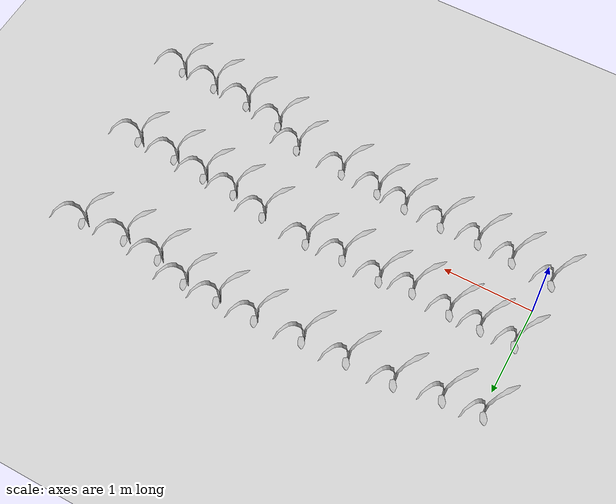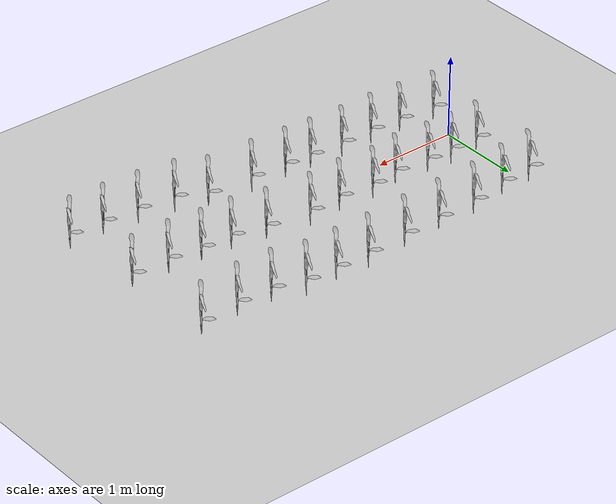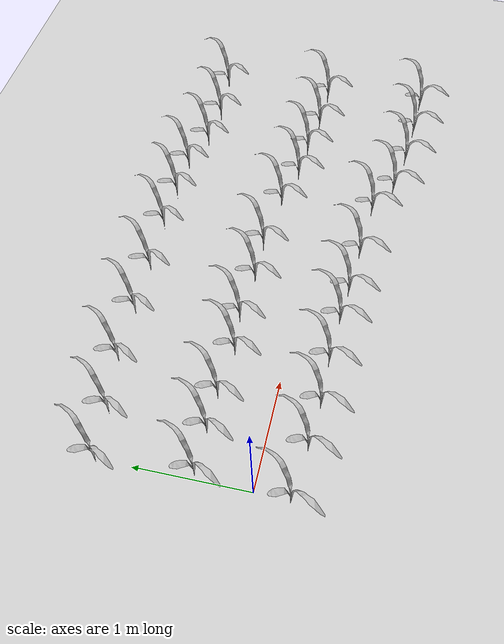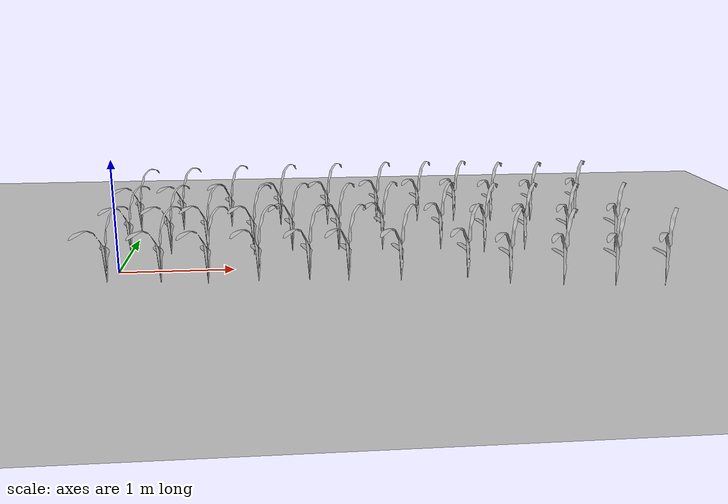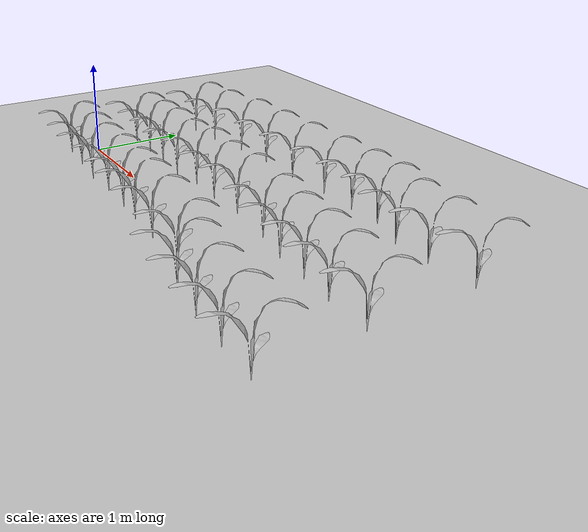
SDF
<sdf version="1.7">
 <world name="default">
  <model name="ground_plane">
   <static>1</static>
   <link name="link">
    <collision name="collision">
     <geometry><plane><normal>0 0 1</normal><size>100 100</size></plane></geometry>
     <surface><friction><ode><mu>100</mu><mu2>50</mu2></ode></friction></surface>
    </collision>
    <visual name="visual">
     <cast_shadows>0</cast_shadows>
     <geometry><plane><normal>0 0 1</normal><size>100 100</size></plane></geometry>
     <material>
      <script><uri>file://media/materials/scripts/gazebo.material</uri><name>Gazebo/Grey</name></script>
     </material>
    </visual>
   </link>
  </model>
  <model name="maize_02">
   <pose>-0.039197 -0.307598 -0 0 -4e-06 1.9e-05</pose>
   <link name="maize_02_link">
    <inertial>
     <pose>0 0 0.01 0 -0 0</pose>
     <mass>0.3</mass>
     <inertia>
      <ixx>0.00334167</ixx>
      <ixy>0</ixy>
      <ixz>0</ixz>
      <iyy>0.00334167</iyy>
      <iyz>0</iyz>
      <izz>1.66667e-05</izz>
     </inertia>
     <pose>0 0 0.1 0 -0 0</pose>
    </inertial>
    <collision name="collision">
     <pose>0 0 0.2 0 -0 0</pose>
     <geometry><box><size>0.02 0.02 0.4</size></box></geometry>
     <surface><friction><ode><mu>10</mu><mu2>10</mu2></ode></friction></surface>
    </collision>
    <visual name="visual">
     <geometry>
      <mesh><uri>model://maize_02/meshes/maize_02.dae</uri><scale>0.683166 0.683166 0.683166</scale></mesh>
     </geometry>
    </visual>
   </link>
  </model>
  <model name="maize_02_clone">
   <pose>0.414629 -0.353848 -0 0 -3e-06 9.8e-05</pose>
   <link name="maize_02_link">
    <inertial>
     <pose>0 0 0.01 0 -0 0</pose>
     <mass>0.3</mass>
     <inertia>
      <ixx>0.00334167</ixx>
      <ixy>0</ixy>
      <ixz>0</ixz>
      <iyy>0.00334167</iyy>
      <iyz>0</iyz>
      <izz>1.66667e-05</izz>
     </inertia>
     <pose>0 0 0.1 0 -0 0</pose>
    </inertial>
    <collision name="collision">
     <pose>0 0 0.2 0 -0 0</pose>
     <geometry><box><size>0.02 0.02 0.4</size></box></geometry>
     <surface><friction><ode><mu>10</mu><mu2>10</mu2></ode></friction></surface>
    </collision>
    <visual name="visual">
     <geometry>
      <mesh><uri>model://maize_02/meshes/maize_02.dae</uri><scale>0.683166 0.683166 0.683166</scale></mesh>
     </geometry>
    </visual>
   </link>
  </model>
  <model name="maize_02_clone_0">
   <pose>0.80933 -0.382771 0 -1.8e-05 -4.5e-05 0.000173</pose>
   <link name="maize_02_link">
    <inertial>
     <pose>0 0 0.01 0 -0 0</pose>
     <mass>0.3</mass>
     <inertia>
      <ixx>0.00334167</ixx>
      <ixy>0</ixy>
      <ixz>0</ixz>
      <iyy>0.00334167</iyy>
      <iyz>0</iyz>
      <izz>1.66667e-05</izz>
     </inertia>
     <pose>0 0 0.1 0 -0 0</pose>
    </inertial>
    <collision name="collision">
     <pose>0 0 0.2 0 -0 0</pose>
     <geometry><box><size>0.02 0.02 0.4</size></box></geometry>
     <surface><friction><ode><mu>10</mu><mu2>10</mu2></ode></friction></surface>
    </collision>
    <visual name="visual">
     <geometry>
      <mesh><uri>model://maize_02/meshes/maize_02.dae</uri><scale>0.683166 0.683166 0.683166</scale></mesh>
     </geometry>
    </visual>
   </link>
  </model>
  <model name="maize_02_clone_1">
   <pose>1.23142 -0.376674 0 8e-06 3e-06 4.9e-05</pose>
   <link name="maize_02_link">
    <inertial>
     <pose>0 0 0.01 0 -0 0</pose>
     <mass>0.3</mass>
     <inertia>
      <ixx>0.00334167</ixx>
      <ixy>0</ixy>
      <ixz>0</ixz>
      <iyy>0.00334167</iyy>
      <iyz>0</iyz>
      <izz>1.66667e-05</izz>
     </inertia>
     <pose>0 0 0.1 0 -0 0</pose>
    </inertial>
    <collision name="collision">
     <pose>0 0 0.2 0 -0 0</pose>
     <geometry><box><size>0.02 0.02 0.4</size></box></geometry>
     <surface><friction><ode><mu>10</mu><mu2>10</mu2></ode></friction></surface>
    </collision>
    <visual name="visual">
     <geometry>
      <mesh><uri>model://maize_02/meshes/maize_02.dae</uri><scale>0.683166 0.683166 0.683166</scale></mesh>
     </geometry>
    </visual>
   </link>
  </model>
  <model name="maize_02_clone_2">
   <pose>1.65894 -0.396394 -0 0 1e-06 4e-05</pose>
   <link name="maize_02_link">
    <inertial>
     <pose>0 0 0.01 0 -0 0</pose>
     <mass>0.3</mass>
     <inertia>
      <ixx>0.00334167</ixx>
      <ixy>0</ixy>
      <ixz>0</ixz>
      <iyy>0.00334167</iyy>
      <iyz>0</iyz>
      <izz>1.66667e-05</izz>
     </inertia>
     <pose>0 0 0.1 0 -0 0</pose>
    </inertial>
    <collision name="collision">
     <pose>0 0 0.2 0 -0 0</pose>
     <geometry><box><size>0.02 0.02 0.4</size></box></geometry>
     <surface><friction><ode><mu>10</mu><mu2>10</mu2></ode></friction></surface>
    </collision>
    <visual name="visual">
     <geometry>
      <mesh><uri>model://maize_02/meshes/maize_02.dae</uri><scale>0.683166 0.683166 0.683166</scale></mesh>
     </geometry>
    </visual>
   </link>
  </model>
  <model name="maize_02_clone_3">
   <pose>1.9905 -0.421164 0 6e-06 -0 0.000102</pose>
   <link name="maize_02_link">
    <inertial>
     <pose>0 0 0.01 0 -0 0</pose>
     <mass>0.3</mass>
     <inertia>
      <ixx>0.00334167</ixx>
      <ixy>0</ixy>
      <ixz>0</ixz>
      <iyy>0.00334167</iyy>
      <iyz>0</iyz>
      <izz>1.66667e-05</izz>
     </inertia>
     <pose>0 0 0.1 0 -0 0</pose>
    </inertial>
    <collision name="collision">
     <pose>0 0 0.2 0 -0 0</pose>
     <geometry><box><size>0.02 0.02 0.4</size></box></geometry>
     <surface><friction><ode><mu>10</mu><mu2>10</mu2></ode></friction></surface>
    </collision>
    <visual name="visual">
     <geometry>
      <mesh><uri>model://maize_02/meshes/maize_02.dae</uri><scale>0.683166 0.683166 0.683166</scale></mesh>
     </geometry>
    </visual>
   </link>
  </model>
  <model name="maize_02_clone_4">
   <pose>2.43459 -0.452195 -0 0 3e-06 0.000107</pose>
   <link name="maize_02_link">
    <inertial>
     <pose>0 0 0.01 0 -0 0</pose>
     <mass>0.3</mass>
     <inertia>
      <ixx>0.00334167</ixx>
      <ixy>0</ixy>
      <ixz>0</ixz>
      <iyy>0.00334167</iyy>
      <iyz>0</iyz>
      <izz>1.66667e-05</izz>
     </inertia>
     <pose>0 0 0.1 0 -0 0</pose>
    </inertial>
    <collision name="collision">
     <pose>0 0 0.2 0 -0 0</pose>
     <geometry><box><size>0.02 0.02 0.4</size></box></geometry>
     <surface><friction><ode><mu>10</mu><mu2>10</mu2></ode></friction></surface>
    </collision>
    <visual name="visual">
     <geometry>
      <mesh><uri>model://maize_02/meshes/maize_02.dae</uri><scale>0.683166 0.683166 0.683166</scale></mesh>
     </geometry>
    </visual>
   </link>
  </model>
  <model name="maize_02_clone_5">
   <pose>3 -0.486082 -0 -0 -3e-06 3.7e-05</pose>
   <link name="maize_02_link">
    <inertial>
     <pose>0 0 0.01 0 -0 0</pose>
     <mass>0.3</mass>
     <inertia>
      <ixx>0.00334167</ixx>
      <ixy>0</ixy>
      <ixz>0</ixz>
      <iyy>0.00334167</iyy>
      <iyz>0</iyz>
      <izz>1.66667e-05</izz>
     </inertia>
     <pose>0 0 0.1 0 -0 0</pose>
    </inertial>
    <collision name="collision">
     <pose>0 0 0.2 0 -0 0</pose>
     <geometry><box><size>0.02 0.02 0.4</size></box></geometry>
     <surface><friction><ode><mu>10</mu><mu2>10</mu2></ode></friction></surface>
    </collision>
    <visual name="visual">
     <geometry>
      <mesh><uri>model://maize_02/meshes/maize_02.dae</uri><scale>0.683166 0.683166 0.683166</scale></mesh>
     </geometry>
    </visual>
   </link>
  </model>
  <model name="maize_02_clone_6">
   <pose>3.32711 -0.655314 -0 -0 4e-06 4.4e-05</pose>
   <link name="maize_02_link">
    <inertial>
     <pose>0 0 0.01 0 -0 0</pose>
     <mass>0.3</mass>
     <inertia>
      <ixx>0.00334167</ixx>
      <ixy>0</ixy>
      <ixz>0</ixz>
      <iyy>0.00334167</iyy>
      <iyz>0</iyz>
      <izz>1.66667e-05</izz>
     </inertia>
     <pose>0 0 0.1 0 -0 0</pose>
    </inertial>
    <collision name="collision">
     <pose>0 0 0.2 0 -0 0</pose>
     <geometry><box><size>0.02 0.02 0.4</size></box></geometry>
     <surface><friction><ode><mu>10</mu><mu2>10</mu2></ode></friction></surface>
    </collision>
    <visual name="visual">
     <geometry>
      <mesh><uri>model://maize_02/meshes/maize_02.dae</uri><scale>0.683166 0.683166 0.683166</scale></mesh>
     </geometry>
    </visual>
   </link>
  </model>
  <model name="maize_02_clone_7">
   <pose>3.76486 -0.722555 0 -1.6e-05 1.1e-05 -3.2e-05</pose>
   <link name="maize_02_link">
    <inertial>
     <pose>0 0 0.01 0 -0 0</pose>
     <mass>0.3</mass>
     <inertia>
      <ixx>0.00334167</ixx>
      <ixy>0</ixy>
      <ixz>0</ixz>
      <iyy>0.00334167</iyy>
      <iyz>0</iyz>
      <izz>1.66667e-05</izz>
     </inertia>
     <pose>0 0 0.1 0 -0 0</pose>
    </inertial>
    <collision name="collision">
     <pose>0 0 0.2 0 -0 0</pose>
     <geometry><box><size>0.02 0.02 0.4</size></box></geometry>
     <surface><friction><ode><mu>10</mu><mu2>10</mu2></ode></friction></surface>
    </collision>
    <visual name="visual">
     <geometry>
      <mesh><uri>model://maize_02/meshes/maize_02.dae</uri><scale>0.683166 0.683166 0.683166</scale></mesh>
     </geometry>
    </visual>
   </link>
  </model>
  <model name="maize_02_clone_8">
   <pose>4.19992 -0.75592 0 1.4e-05 -9e-06 -8.9e-05</pose>
   <link name="maize_02_link">
    <inertial>
     <pose>0 0 0.01 0 -0 0</pose>
     <mass>0.3</mass>
     <inertia>
      <ixx>0.00334167</ixx>
      <ixy>0</ixy>
      <ixz>0</ixz>
      <iyy>0.00334167</iyy>
      <iyz>0</iyz>
      <izz>1.66667e-05</izz>
     </inertia>
     <pose>0 0 0.1 0 -0 0</pose>
    </inertial>
    <collision name="collision">
     <pose>0 0 0.2 0 -0 0</pose>
     <geometry><box><size>0.02 0.02 0.4</size></box></geometry>
     <surface><friction><ode><mu>10</mu><mu2>10</mu2></ode></friction></surface>
    </collision>
    <visual name="visual">
     <geometry>
      <mesh><uri>model://maize_02/meshes/maize_02.dae</uri><scale>0.683166 0.683166 0.683166</scale></mesh>
     </geometry>
    </visual>
   </link>
  </model>
  <model name="maize_02_clone_9">
   <pose>4.61985 -0.775823 0 8e-06 4e-05 -9.1e-05</pose>
   <link name="maize_02_link">
    <inertial>
     <pose>0 0 0.01 0 -0 0</pose>
     <mass>0.3</mass>
     <inertia>
      <ixx>0.00334167</ixx>
      <ixy>0</ixy>
      <ixz>0</ixz>
      <iyy>0.00334167</iyy>
      <iyz>0</iyz>
      <izz>1.66667e-05</izz>
     </inertia>
     <pose>0 0 0.1 0 -0 0</pose>
    </inertial>
    <collision name="collision">
     <pose>0 0 0.2 0 -0 0</pose>
     <geometry><box><size>0.02 0.02 0.4</size></box></geometry>
     <surface><friction><ode><mu>10</mu><mu2>10</mu2></ode></friction></surface>
    </collision>
    <visual name="visual">
     <geometry>
      <mesh><uri>model://maize_02/meshes/maize_02.dae</uri><scale>0.683166 0.683166 0.683166</scale></mesh>
     </geometry>
    </visual>
   </link>
  </model>
  <model name="maize_02_clone_22">
   <pose>0.01515 0.477195 0 -3.4e-05 -1.4e-05 -4.3e-05</pose>
   <link name="maize_02_link">
    <inertial>
     <pose>0 0 0.01 0 -0 0</pose>
     <mass>0.3</mass>
     <inertia>
      <ixx>0.00334167</ixx>
      <ixy>0</ixy>
      <ixz>0</ixz>
      <iyy>0.00334167</iyy>
      <iyz>0</iyz>
      <izz>1.66667e-05</izz>
     </inertia>
     <pose>0 0 0.1 0 -0 0</pose>
    </inertial>
    <collision name="collision">
     <pose>0 0 0.2 0 -0 0</pose>
     <geometry><box><size>0.02 0.02 0.4</size></box></geometry>
     <surface><friction><ode><mu>10</mu><mu2>10</mu2></ode></friction></surface>
    </collision>
    <visual name="visual">
     <geometry>
      <mesh><uri>model://maize_02/meshes/maize_02.dae</uri><scale>0.683166 0.683166 0.683166</scale></mesh>
     </geometry>
    </visual>
   </link>
  </model>
  <model name="maize_02_clone_23">
   <pose>0.385555 0.477755 -0 1e-06 -0 0.000204</pose>
   <link name="maize_02_link">
    <inertial>
     <pose>0 0 0.01 0 -0 0</pose>
     <mass>0.3</mass>
     <inertia>
      <ixx>0.00334167</ixx>
      <ixy>0</ixy>
      <ixz>0</ixz>
      <iyy>0.00334167</iyy>
      <iyz>0</iyz>
      <izz>1.66667e-05</izz>
     </inertia>
     <pose>0 0 0.1 0 -0 0</pose>
    </inertial>
    <collision name="collision">
     <pose>0 0 0.2 0 -0 0</pose>
     <geometry><box><size>0.02 0.02 0.4</size></box></geometry>
     <surface><friction><ode><mu>10</mu><mu2>10</mu2></ode></friction></surface>
    </collision>
    <visual name="visual">
     <geometry>
      <mesh><uri>model://maize_02/meshes/maize_02.dae</uri><scale>0.683166 0.683166 0.683166</scale></mesh>
     </geometry>
    </visual>
   </link>
  </model>
  <model name="maize_02_clone_24">
   <pose>0.723452 0.477452 -0 -4e-06 0 -4e-06</pose>
   <link name="maize_02_link">
    <inertial>
     <pose>0 0 0.01 0 -0 0</pose>
     <mass>0.3</mass>
     <inertia>
      <ixx>0.00334167</ixx>
      <ixy>0</ixy>
      <ixz>0</ixz>
      <iyy>0.00334167</iyy>
      <iyz>0</iyz>
      <izz>1.66667e-05</izz>
     </inertia>
     <pose>0 0 0.1 0 -0 0</pose>
    </inertial>
    <collision name="collision">
     <pose>0 0 0.2 0 -0 0</pose>
     <geometry><box><size>0.02 0.02 0.4</size></box></geometry>
     <surface><friction><ode><mu>10</mu><mu2>10</mu2></ode></friction></surface>
    </collision>
    <visual name="visual">
     <geometry>
      <mesh><uri>model://maize_02/meshes/maize_02.dae</uri><scale>0.683166 0.683166 0.683166</scale></mesh>
     </geometry>
    </visual>
   </link>
  </model>
  <model name="maize_02_clone_25">
   <pose>1.15379 0.437481 -0 -8e-06 1e-06 5.2e-05</pose>
   <link name="maize_02_link">
    <inertial>
     <pose>0 0 0.01 0 -0 0</pose>
     <mass>0.3</mass>
     <inertia>
      <ixx>0.00334167</ixx>
      <ixy>0</ixy>
      <ixz>0</ixz>
      <iyy>0.00334167</iyy>
      <iyz>0</iyz>
      <izz>1.66667e-05</izz>
     </inertia>
     <pose>0 0 0.1 0 -0 0</pose>
    </inertial>
    <collision name="collision">
     <pose>0 0 0.2 0 -0 0</pose>
     <geometry><box><size>0.02 0.02 0.4</size></box></geometry>
     <surface><friction><ode><mu>10</mu><mu2>10</mu2></ode></friction></surface>
    </collision>
    <visual name="visual">
     <geometry>
      <mesh><uri>model://maize_02/meshes/maize_02.dae</uri><scale>0.683166 0.683166 0.683166</scale></mesh>
     </geometry>
    </visual>
   </link>
  </model>
  <model name="maize_02_clone_26">
   <pose>1.51091 0.483416 -0 3e-06 0 0.00018</pose>
   <link name="maize_02_link">
    <inertial>
     <pose>0 0 0.01 0 -0 0</pose>
     <mass>0.3</mass>
     <inertia>
      <ixx>0.00334167</ixx>
      <ixy>0</ixy>
      <ixz>0</ixz>
      <iyy>0.00334167</iyy>
      <iyz>0</iyz>
      <izz>1.66667e-05</izz>
     </inertia>
     <pose>0 0 0.1 0 -0 0</pose>
    </inertial>
    <collision name="collision">
     <pose>0 0 0.2 0 -0 0</pose>
     <geometry><box><size>0.02 0.02 0.4</size></box></geometry>
     <surface><friction><ode><mu>10</mu><mu2>10</mu2></ode></friction></surface>
    </collision>
    <visual name="visual">
     <geometry>
      <mesh><uri>model://maize_02/meshes/maize_02.dae</uri><scale>0.683166 0.683166 0.683166</scale></mesh>
     </geometry>
    </visual>
   </link>
  </model>
  <model name="maize_02_clone_27">
   <pose>1.94783 0.446381 -0 -1e-06 -0 -4.6e-05</pose>
   <link name="maize_02_link">
    <inertial>
     <pose>0 0 0.01 0 -0 0</pose>
     <mass>0.3</mass>
     <inertia>
      <ixx>0.00334167</ixx>
      <ixy>0</ixy>
      <ixz>0</ixz>
      <iyy>0.00334167</iyy>
      <iyz>0</iyz>
      <izz>1.66667e-05</izz>
     </inertia>
     <pose>0 0 0.1 0 -0 0</pose>
    </inertial>
    <collision name="collision">
     <pose>0 0 0.2 0 -0 0</pose>
     <geometry><box><size>0.02 0.02 0.4</size></box></geometry>
     <surface><friction><ode><mu>10</mu><mu2>10</mu2></ode></friction></surface>
    </collision>
    <visual name="visual">
     <geometry>
      <mesh><uri>model://maize_02/meshes/maize_02.dae</uri><scale>0.683166 0.683166 0.683166</scale></mesh>
     </geometry>
    </visual>
   </link>
  </model>
  <model name="maize_02_clone_28">
   <pose>2.36493 0.463885 -0 -3e-06 -0 5.7e-05</pose>
   <link name="maize_02_link">
    <inertial>
     <pose>0 0 0.01 0 -0 0</pose>
     <mass>0.3</mass>
     <inertia>
      <ixx>0.00334167</ixx>
      <ixy>0</ixy>
      <ixz>0</ixz>
      <iyy>0.00334167</iyy>
      <iyz>0</iyz>
      <izz>1.66667e-05</izz>
     </inertia>
     <pose>0 0 0.1 0 -0 0</pose>
    </inertial>
    <collision name="collision">
     <pose>0 0 0.2 0 -0 0</pose>
     <geometry><box><size>0.02 0.02 0.4</size></box></geometry>
     <surface><friction><ode><mu>10</mu><mu2>10</mu2></ode></friction></surface>
    </collision>
    <visual name="visual">
     <geometry>
      <mesh><uri>model://maize_02/meshes/maize_02.dae</uri><scale>0.683166 0.683166 0.683166</scale></mesh>
     </geometry>
    </visual>
   </link>
  </model>
  <model name="maize_02_clone_29">
   <pose>2.91405 0.403722 -9e-06 -5.9e-05 1e-06 0.000101</pose>
   <link name="maize_02_link">
    <inertial>
     <pose>0 0 0.01 0 -0 0</pose>
     <mass>0.3</mass>
     <inertia>
      <ixx>0.00334167</ixx>
      <ixy>0</ixy>
      <ixz>0</ixz>
      <iyy>0.00334167</iyy>
      <iyz>0</iyz>
      <izz>1.66667e-05</izz>
     </inertia>
     <pose>0 0 0.1 0 -0 0</pose>
    </inertial>
    <collision name="collision">
     <pose>0 0 0.2 0 -0 0</pose>
     <geometry><box><size>0.02 0.02 0.4</size></box></geometry>
     <surface><friction><ode><mu>10</mu><mu2>10</mu2></ode></friction></surface>
    </collision>
    <visual name="visual">
     <geometry>
      <mesh><uri>model://maize_02/meshes/maize_02.dae</uri><scale>0.683166 0.683166 0.683166</scale></mesh>
     </geometry>
    </visual>
   </link>
  </model>
  <model name="maize_02_clone_30">
   <pose>3.31657 0.31493 0 2.7e-05 8e-06 5.1e-05</pose>
   <link name="maize_02_link">
    <inertial>
     <pose>0 0 0.01 0 -0 0</pose>
     <mass>0.3</mass>
     <inertia>
      <ixx>0.00334167</ixx>
      <ixy>0</ixy>
      <ixz>0</ixz>
      <iyy>0.00334167</iyy>
      <iyz>0</iyz>
      <izz>1.66667e-05</izz>
     </inertia>
     <pose>0 0 0.1 0 -0 0</pose>
    </inertial>
    <collision name="collision">
     <pose>0 0 0.2 0 -0 0</pose>
     <geometry><box><size>0.02 0.02 0.4</size></box></geometry>
     <surface><friction><ode><mu>10</mu><mu2>10</mu2></ode></friction></surface>
    </collision>
    <visual name="visual">
     <geometry>
      <mesh><uri>model://maize_02/meshes/maize_02.dae</uri><scale>0.683166 0.683166 0.683166</scale></mesh>
     </geometry>
    </visual>
   </link>
  </model>
  <model name="maize_02_clone_31">
   <pose>3.69814 0.294389 0 1.2e-05 3.6e-05 5.4e-05</pose>
   <link name="maize_02_link">
    <inertial>
     <pose>0 0 0.01 0 -0 0</pose>
     <mass>0.3</mass>
     <inertia>
      <ixx>0.00334167</ixx>
      <ixy>0</ixy>
      <ixz>0</ixz>
      <iyy>0.00334167</iyy>
      <iyz>0</iyz>
      <izz>1.66667e-05</izz>
     </inertia>
     <pose>0 0 0.1 0 -0 0</pose>
    </inertial>
    <collision name="collision">
     <pose>0 0 0.2 0 -0 0</pose>
     <geometry><box><size>0.02 0.02 0.4</size></box></geometry>
     <surface><friction><ode><mu>10</mu><mu2>10</mu2></ode></friction></surface>
    </collision>
    <visual name="visual">
     <geometry>
      <mesh><uri>model://maize_02/meshes/maize_02.dae</uri><scale>0.683166 0.683166 0.683166</scale></mesh>
     </geometry>
    </visual>
   </link>
  </model>
  <model name="maize_02_clone_32">
   <pose>4.09326 0.243617 1e-06 8e-05 -1e-06 4.5e-05</pose>
   <link name="maize_02_link">
    <inertial>
     <pose>0 0 0.01 0 -0 0</pose>
     <mass>0.3</mass>
     <inertia>
      <ixx>0.00334167</ixx>
      <ixy>0</ixy>
      <ixz>0</ixz>
      <iyy>0.00334167</iyy>
      <iyz>0</iyz>
      <izz>1.66667e-05</izz>
     </inertia>
     <pose>0 0 0.1 0 -0 0</pose>
    </inertial>
    <collision name="collision">
     <pose>0 0 0.2 0 -0 0</pose>
     <geometry><box><size>0.02 0.02 0.4</size></box></geometry>
     <surface><friction><ode><mu>10</mu><mu2>10</mu2></ode></friction></surface>
    </collision>
    <visual name="visual">
     <geometry>
      <mesh><uri>model://maize_02/meshes/maize_02.dae</uri><scale>0.683166 0.683166 0.683166</scale></mesh>
     </geometry>
    </visual>
   </link>
  </model>
  <model name="maize_02_clone_33">
   <pose>4.55536 0.234645 0 -1.4e-05 -0 -5e-05</pose>
   <link name="maize_02_link">
    <inertial>
     <pose>0 0 0.01 0 -0 0</pose>
     <mass>0.3</mass>
     <inertia>
      <ixx>0.00334167</ixx>
      <ixy>0</ixy>
      <ixz>0</ixz>
      <iyy>0.00334167</iyy>
      <iyz>0</iyz>
      <izz>1.66667e-05</izz>
     </inertia>
     <pose>0 0 0.1 0 -0 0</pose>
    </inertial>
    <collision name="collision">
     <pose>0 0 0.2 0 -0 0</pose>
     <geometry><box><size>0.02 0.02 0.4</size></box></geometry>
     <surface><friction><ode><mu>10</mu><mu2>10</mu2></ode></friction></surface>
    </collision>
    <visual name="visual">
     <geometry>
      <mesh><uri>model://maize_02/meshes/maize_02.dae</uri><scale>0.683166 0.683166 0.683166</scale></mesh>
     </geometry>
    </visual>
   </link>
  </model>
  <model name="maize_02_clone_45">
   <pose>-0.023999 1.28843 0 1.1e-05 -3e-05 6e-05</pose>
   <link name="maize_02_link">
    <inertial>
     <pose>0 0 0.01 0 -0 0</pose>
     <mass>0.3</mass>
     <inertia>
      <ixx>0.00334167</ixx>
      <ixy>0</ixy>
      <ixz>0</ixz>
      <iyy>0.00334167</iyy>
      <iyz>0</iyz>
      <izz>1.66667e-05</izz>
     </inertia>
     <pose>0 0 0.1 0 -0 0</pose>
    </inertial>
    <collision name="collision">
     <pose>0 0 0.2 0 -0 0</pose>
     <geometry><box><size>0.02 0.02 0.4</size></box></geometry>
     <surface><friction><ode><mu>10</mu><mu2>10</mu2></ode></friction></surface>
    </collision>
    <visual name="visual">
     <geometry>
      <mesh><uri>model://maize_02/meshes/maize_02.dae</uri><scale>0.683166 0.683166 0.683166</scale></mesh>
     </geometry>
    </visual>
   </link>
  </model>
  <model name="maize_02_clone_46">
   <pose>0.396368 1.32298 -9e-06 -3e-05 -4e-06 7.9e-05</pose>
   <link name="maize_02_link">
    <inertial>
     <pose>0 0 0.01 0 -0 0</pose>
     <mass>0.3</mass>
     <inertia>
      <ixx>0.00334167</ixx>
      <ixy>0</ixy>
      <ixz>0</ixz>
      <iyy>0.00334167</iyy>
      <iyz>0</iyz>
      <izz>1.66667e-05</izz>
     </inertia>
     <pose>0 0 0.1 0 -0 0</pose>
    </inertial>
    <collision name="collision">
     <pose>0 0 0.2 0 -0 0</pose>
     <geometry><box><size>0.02 0.02 0.4</size></box></geometry>
     <surface><friction><ode><mu>10</mu><mu2>10</mu2></ode></friction></surface>
    </collision>
    <visual name="visual">
     <geometry>
      <mesh><uri>model://maize_02/meshes/maize_02.dae</uri><scale>0.683166 0.683166 0.683166</scale></mesh>
     </geometry>
    </visual>
   </link>
  </model>
  <model name="maize_02_clone_47">
   <pose>0.880351 1.40531 -0 0 1.2e-05 -4.8e-05</pose>
   <link name="maize_02_link">
    <inertial>
     <pose>0 0 0.01 0 -0 0</pose>
     <mass>0.3</mass>
     <inertia>
      <ixx>0.00334167</ixx>
      <ixy>0</ixy>
      <ixz>0</ixz>
      <iyy>0.00334167</iyy>
      <iyz>0</iyz>
      <izz>1.66667e-05</izz>
     </inertia>
     <pose>0 0 0.1 0 -0 0</pose>
    </inertial>
    <collision name="collision">
     <pose>0 0 0.2 0 -0 0</pose>
     <geometry><box><size>0.02 0.02 0.4</size></box></geometry>
     <surface><friction><ode><mu>10</mu><mu2>10</mu2></ode></friction></surface>
    </collision>
    <visual name="visual">
     <geometry>
      <mesh><uri>model://maize_02/meshes/maize_02.dae</uri><scale>0.683166 0.683166 0.683166</scale></mesh>
     </geometry>
    </visual>
   </link>
  </model>
  <model name="maize_02_clone_48">
   <pose>1.38554 1.42042 -0 -4e-06 -0 5.2e-05</pose>
   <link name="maize_02_link">
    <inertial>
     <pose>0 0 0.01 0 -0 0</pose>
     <mass>0.3</mass>
     <inertia>
      <ixx>0.00334167</ixx>
      <ixy>0</ixy>
      <ixz>0</ixz>
      <iyy>0.00334167</iyy>
      <iyz>0</iyz>
      <izz>1.66667e-05</izz>
     </inertia>
     <pose>0 0 0.1 0 -0 0</pose>
    </inertial>
    <collision name="collision">
     <pose>0 0 0.2 0 -0 0</pose>
     <geometry><box><size>0.02 0.02 0.4</size></box></geometry>
     <surface><friction><ode><mu>10</mu><mu2>10</mu2></ode></friction></surface>
    </collision>
    <visual name="visual">
     <geometry>
      <mesh><uri>model://maize_02/meshes/maize_02.dae</uri><scale>0.683166 0.683166 0.683166</scale></mesh>
     </geometry>
    </visual>
   </link>
  </model>
  <model name="maize_02_clone_49">
   <pose>1.87541 1.43506 -0 1e-05 2e-06 6.3e-05</pose>
   <link name="maize_02_link">
    <inertial>
     <pose>0 0 0.01 0 -0 0</pose>
     <mass>0.3</mass>
     <inertia>
      <ixx>0.00334167</ixx>
      <ixy>0</ixy>
      <ixz>0</ixz>
      <iyy>0.00334167</iyy>
      <iyz>0</iyz>
      <izz>1.66667e-05</izz>
     </inertia>
     <pose>0 0 0.1 0 -0 0</pose>
    </inertial>
    <collision name="collision">
     <pose>0 0 0.2 0 -0 0</pose>
     <geometry><box><size>0.02 0.02 0.4</size></box></geometry>
     <surface><friction><ode><mu>10</mu><mu2>10</mu2></ode></friction></surface>
    </collision>
    <visual name="visual">
     <geometry>
      <mesh><uri>model://maize_02/meshes/maize_02.dae</uri><scale>0.683166 0.683166 0.683166</scale></mesh>
     </geometry>
    </visual>
   </link>
  </model>
  <model name="maize_02_clone_50">
   <pose>2.39783 1.46238 -0 -3e-06 -0 1.8e-05</pose>
   <link name="maize_02_link">
    <inertial>
     <pose>0 0 0.01 0 -0 0</pose>
     <mass>0.3</mass>
     <inertia>
      <ixx>0.00334167</ixx>
      <ixy>0</ixy>
      <ixz>0</ixz>
      <iyy>0.00334167</iyy>
      <iyz>0</iyz>
      <izz>1.66667e-05</izz>
     </inertia>
     <pose>0 0 0.1 0 -0 0</pose>
    </inertial>
    <collision name="collision">
     <pose>0 0 0.2 0 -0 0</pose>
     <geometry><box><size>0.02 0.02 0.4</size></box></geometry>
     <surface><friction><ode><mu>10</mu><mu2>10</mu2></ode></friction></surface>
    </collision>
    <visual name="visual">
     <geometry>
      <mesh><uri>model://maize_02/meshes/maize_02.dae</uri><scale>0.683166 0.683166 0.683166</scale></mesh>
     </geometry>
    </visual>
   </link>
  </model>
  <model name="maize_02_clone_51">
   <pose>2.83525 1.4637 -1e-05 -2e-06 1e-05 -1e-05</pose>
   <link name="maize_02_link">
    <inertial>
     <pose>0 0 0.01 0 -0 0</pose>
     <mass>0.3</mass>
     <inertia>
      <ixx>0.00334167</ixx>
      <ixy>0</ixy>
      <ixz>0</ixz>
      <iyy>0.00334167</iyy>
      <iyz>0</iyz>
      <izz>1.66667e-05</izz>
     </inertia>
     <pose>0 0 0.1 0 -0 0</pose>
    </inertial>
    <collision name="collision">
     <pose>0 0 0.2 0 -0 0</pose>
     <geometry><box><size>0.02 0.02 0.4</size></box></geometry>
     <surface><friction><ode><mu>10</mu><mu2>10</mu2></ode></friction></surface>
    </collision>
    <visual name="visual">
     <geometry>
      <mesh><uri>model://maize_02/meshes/maize_02.dae</uri><scale>0.683166 0.683166 0.683166</scale></mesh>
     </geometry>
    </visual>
   </link>
  </model>
  <model name="maize_02_clone_52">
   <pose>3.22705 1.45243 -0 9e-06 -7e-06 7.5e-05</pose>
   <link name="maize_02_link">
    <inertial>
     <pose>0 0 0.01 0 -0 0</pose>
     <mass>0.3</mass>
     <inertia>
      <ixx>0.00334167</ixx>
      <ixy>0</ixy>
      <ixz>0</ixz>
      <iyy>0.00334167</iyy>
      <iyz>0</iyz>
      <izz>1.66667e-05</izz>
     </inertia>
     <pose>0 0 0.1 0 -0 0</pose>
    </inertial>
    <collision name="collision">
     <pose>0 0 0.2 0 -0 0</pose>
     <geometry><box><size>0.02 0.02 0.4</size></box></geometry>
     <surface><friction><ode><mu>10</mu><mu2>10</mu2></ode></friction></surface>
    </collision>
    <visual name="visual">
     <geometry>
      <mesh><uri>model://maize_02/meshes/maize_02.dae</uri><scale>0.683166 0.683166 0.683166</scale></mesh>
     </geometry>
    </visual>
   </link>
  </model>
  <model name="maize_02_clone_53">
   <pose>3.60136 1.34482 0 -4e-06 6.8e-05 9.8e-05</pose>
   <link name="maize_02_link">
    <inertial>
     <pose>0 0 0.01 0 -0 0</pose>
     <mass>0.3</mass>
     <inertia>
      <ixx>0.00334167</ixx>
      <ixy>0</ixy>
      <ixz>0</ixz>
      <iyy>0.00334167</iyy>
      <iyz>0</iyz>
      <izz>1.66667e-05</izz>
     </inertia>
     <pose>0 0 0.1 0 -0 0</pose>
    </inertial>
    <collision name="collision">
     <pose>0 0 0.2 0 -0 0</pose>
     <geometry><box><size>0.02 0.02 0.4</size></box></geometry>
     <surface><friction><ode><mu>10</mu><mu2>10</mu2></ode></friction></surface>
    </collision>
    <visual name="visual">
     <geometry>
      <mesh><uri>model://maize_02/meshes/maize_02.dae</uri><scale>0.683166 0.683166 0.683166</scale></mesh>
     </geometry>
    </visual>
   </link>
  </model>
  <model name="maize_02_clone_54">
   <pose>4.02787 1.32122 -0 -3e-06 -0 9e-05</pose>
   <link name="maize_02_link">
    <inertial>
     <pose>0 0 0.01 0 -0 0</pose>
     <mass>0.3</mass>
     <inertia>
      <ixx>0.00334167</ixx>
      <ixy>0</ixy>
      <ixz>0</ixz>
      <iyy>0.00334167</iyy>
      <iyz>0</iyz>
      <izz>1.66667e-05</izz>
     </inertia>
     <pose>0 0 0.1 0 -0 0</pose>
    </inertial>
    <collision name="collision">
     <pose>0 0 0.2 0 -0 0</pose>
     <geometry><box><size>0.02 0.02 0.4</size></box></geometry>
     <surface><friction><ode><mu>10</mu><mu2>10</mu2></ode></friction></surface>
    </collision>
    <visual name="visual">
     <geometry>
      <mesh><uri>model://maize_02/meshes/maize_02.dae</uri><scale>0.683166 0.683166 0.683166</scale></mesh>
     </geometry>
    </visual>
   </link>
  </model>
  <model name="maize_02_clone_55">
   <pose>4.5218 1.35966 0 -1e-06 0 8e-06</pose>
   <link name="maize_02_link">
    <inertial>
     <pose>0 0 0.01 0 -0 0</pose>
     <mass>0.3</mass>
     <inertia>
      <ixx>0.00334167</ixx>
      <ixy>0</ixy>
      <ixz>0</ixz>
      <iyy>0.00334167</iyy>
      <iyz>0</iyz>
      <izz>1.66667e-05</izz>
     </inertia>
     <pose>0 0 0.1 0 -0 0</pose>
    </inertial>
    <collision name="collision">
     <pose>0 0 0.2 0 -0 0</pose>
     <geometry><box><size>0.02 0.02 0.4</size></box></geometry>
     <surface><friction><ode><mu>10</mu><mu2>10</mu2></ode></friction></surface>
    </collision>
    <visual name="visual">
     <geometry>
      <mesh><uri>model://maize_02/meshes/maize_02.dae</uri><scale>0.683166 0.683166 0.683166</scale></mesh>
     </geometry>
    </visual>
   </link>
  </model>
 </world>
</sdf>
